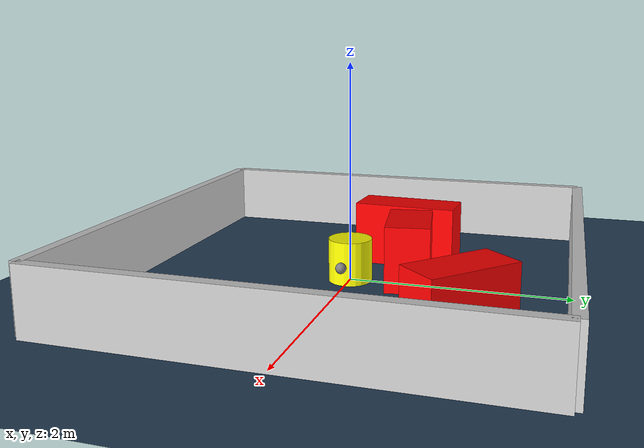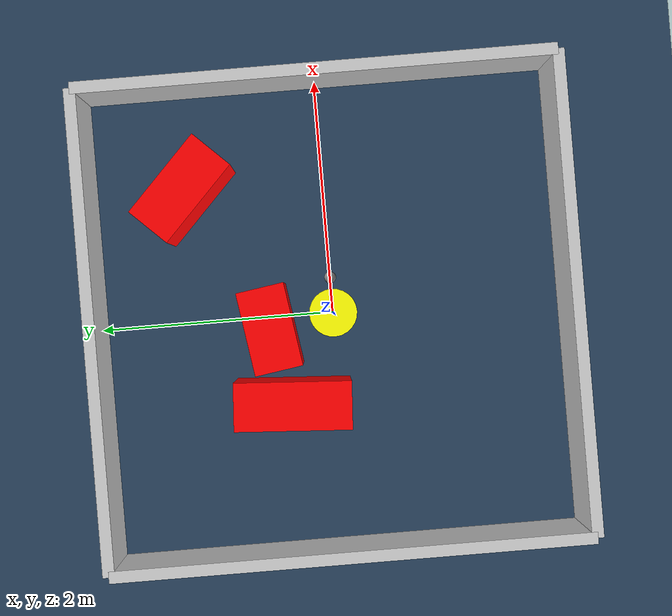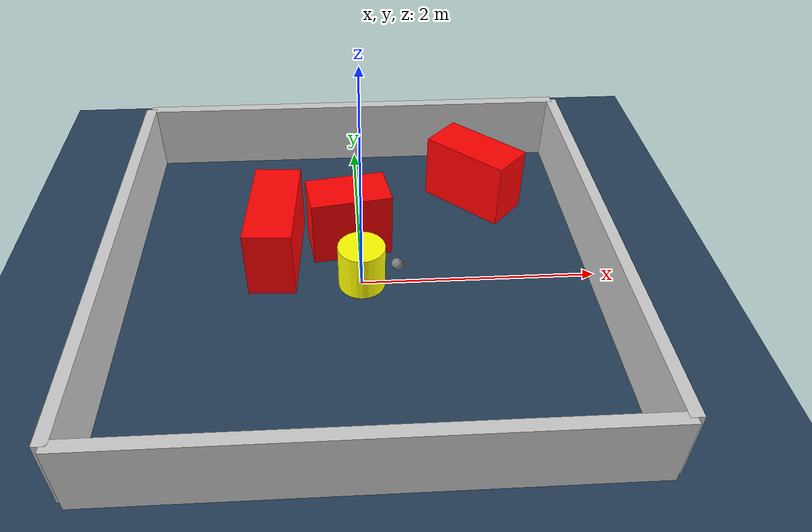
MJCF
<?xml version="1.0" ?>
<mujoco model="generated_environment">
  <option timestep="0.01" integrator="RK4" cone="elliptic"/>
  <default>
    <geom density="1"/>
  </default>
  <asset>
    <texture builtin="gradient" height="3072" rgb1="0.3 0.5 0.7" rgb2="0 0 0" type="skybox" width="512"/>
    <texture builtin="checker" height="300" mark="edge" markrgb="0.8 0.8 0.8" name="groundplane" rgb1="0.2 0.3 0.4" rgb2="0.1 0.2 0.3" type="2d" width="300"/>
    <material name="groundplane" reflectance="0.2" texrepeat="5 5" texture="groundplane" texuniform="true"/>
    <material name="robot" rgba="0.0 1.0 0.0 1"/>
  </asset>
  <worldbody>
    <light dir="0 0 -1" directional="true" pos="0 0 1.5"/>
    <geom condim="4" friction="1.0 0.005 0.001" material="groundplane" name="floor" size="0 0 0.05" type="plane"/>
    <body name="walls">
      <geom name="wall_1" condim="4" pos="-2.0 0.0 0.3" rgba="0.800000011920929 0.800000011920929 0.800000011920929 1.0" size="0.05 2.0 0.3" type="box"/>
      <geom name="wall_2" condim="4" pos="2.0 0.0 0.3" rgba="0.800000011920929 0.800000011920929 0.800000011920929 1.0" size="0.05 2.0 0.3" type="box"/>
      <geom name="wall_3" condim="4" pos="0.0 -2.0 0.3" rgba="0.800000011920929 0.800000011920929 0.800000011920929 1.0" size="2.0 0.05 0.3" type="box"/>
      <geom name="wall_4" condim="4" pos="0.0 2.0 0.3" rgba="0.800000011920929 0.800000011920929 0.800000011920929 1.0" size="2.0 0.05 0.3" type="box"/>
    </body>
    <body name="robot">
      <joint name="joint_x" type="slide" pos="0 0 0" axis="1 0 0"/>
      <joint name="joint_y" type="slide" pos="0 0 0" axis="0 1 0"/>
      <geom name="robot" type="sphere" pos="0.3 0.0 0.2" size="0.05" mass="5." friction="1.0 0.005 0.0001" condim="4" rgba="0.5 0.5 0.5 1.0"/>
      <site name="sensor_ball"/>
    </body>
    <body name="obstacle_movable_1">
      <geom name="obstacle_movable_1" condim="4" pos="0.0 0.0 0.2" euler="0 0 0.0" friction="1.0 0.005 0.001" rgba="1.0 1.0 0.0 1.0" size="0.2 0.2 0.0" type="cylinder" mass="0.1"/>
      <joint type="free"/>
    </body>
    <body name="obstacle_2_static">
      <geom name="obstacle_2_static" condim="4" pos="-0.7316295928296573 0.39167917218198745 0.3" euler="0 0 86.6056486632716" friction="1.0 0.005 0.001" rgba="1 0 0 1" size="0.48487729270699653 0.2 0.3" type="box"/>
    </body>
    <body name="obstacle_3_static">
      <geom name="obstacle_3_static" condim="4" pos="1.1144416908188504 1.1698536686393737 0.3" euler="0 0 136.43024590176736" friction="1.0 0.005 0.001" rgba="1 0 0 1" size="0.4102674796711695 0.2 0.3" type="box"/>
    </body>
    <body name="obstacle_4_static">
      <geom name="obstacle_4_static" condim="4" pos="-0.0916614123234405 0.5327122931226203 0.3" euler="0 0 188.82127879881838" friction="1.0 0.005 0.001" rgba="1 0 0 1" size="0.34782646719156707 0.2 0.3" type="box"/>
    </body>
  </worldbody>
  <actuator>
    <motor name="actuator_x" joint="joint_x" gear="1" ctrlrange="-1 1"/>
    <motor name="actuator_y" joint="joint_y" gear="1" ctrlrange="-1 1"/>
  </actuator>
</mujoco>
